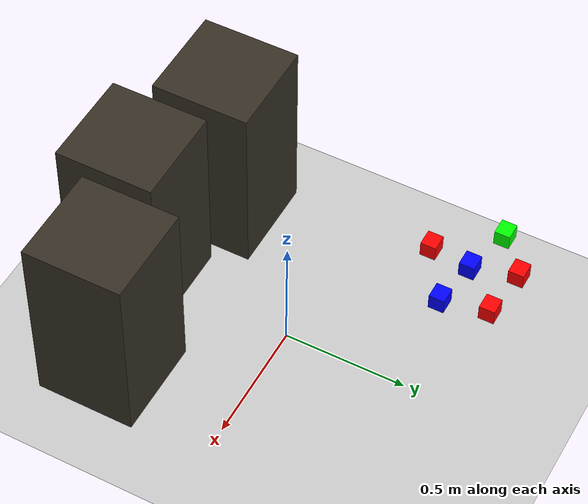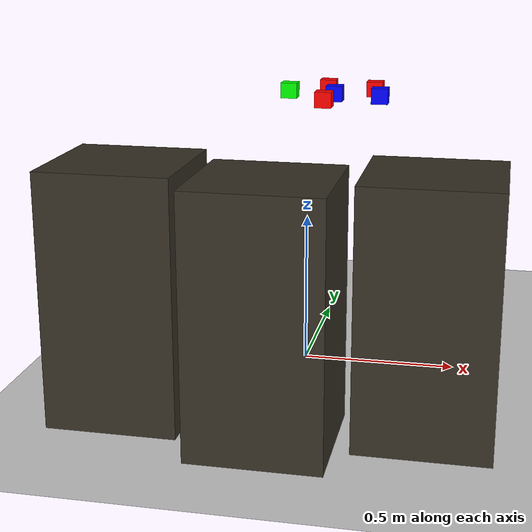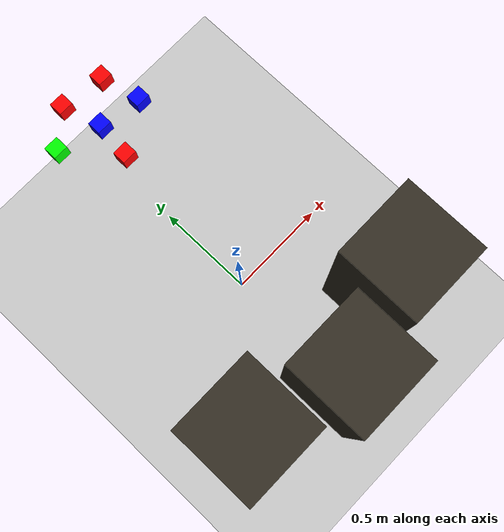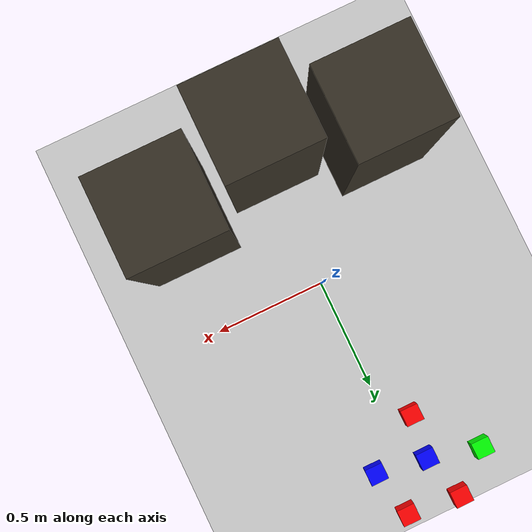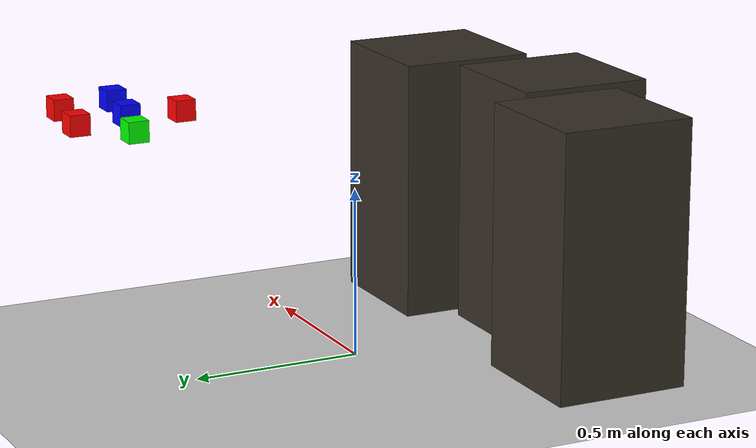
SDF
<sdf version="1.6">
 <world name="default">
  <light name="sun" type="directional">
   <pose>0 0 10 0 -0 0</pose>
   <diffuse>0.8 0.8 0.8 1</diffuse>
   <specular>0.2 0.2 0.2 1</specular>
   <attenuation>
    <range>1000</range>
    <constant>0.9</constant>
    <linear>0.01</linear>
    <quadratic>0.001</quadratic>
   </attenuation>
   <direction>-0.5 0.1 -0.9</direction>
  </light>
  <model name="ground_plane">
   <static>1</static>
   <link name="link">
    <collision name="collision">
     <geometry><plane><normal>0 0 1</normal><size>100 100</size></plane></geometry>
     <surface>
      <contact><collide_bitmask>65535</collide_bitmask></contact>
      <friction><ode><mu>100</mu><mu2>50</mu2></ode></friction>
     </surface>
    </collision>
    <visual name="visual">
     <cast_shadows>0</cast_shadows>
     <geometry><plane><normal>0 0 1</normal><size>100 100</size></plane></geometry>
     <material>
      <script><uri>file://media/materials/scripts/gazebo.material</uri><name>Gazebo/Grey</name></script>
     </material>
    </visual>
   </link>
  </model>
  <gravity>0 0 -9.8</gravity>
  <magnetic_field>6e-06 2.3e-05 -4.2e-05</magnetic_field>
  <atmosphere type="adiabatic"/>
  <physics name="default_physics" default="0" type="ode">
   <max_step_size>0.001</max_step_size>
   <real_time_factor>1</real_time_factor>
   <real_time_update_rate>1000</real_time_update_rate>
  </physics>
  <scene><ambient>0.4 0.4 0.4 1</ambient><background>0.7 0.7 0.7 1</background><shadows>1</shadows></scene>
  <audio><device>default</device></audio>
  <spherical_coordinates>
   <surface_model>EARTH_WGS84</surface_model>
   <latitude_deg>0</latitude_deg>
   <longitude_deg>0</longitude_deg>
   <elevation>0</elevation>
   <heading_deg>0</heading_deg>
  </spherical_coordinates>
  <model name="support_clone_dens">
   <link name="link">
    <inertial>
     <mass>87.36</mass>
     <inertia><ixx>5.59395</ixx><ixy>0</ixy><ixz>0</ixz><iyy>5.59395</iyy><iyz>0</iyz><izz>2.3296</izz></inertia>
    </inertial>
    <visual name="visual">
     <geometry><box><size>0.4 0.4 0.78</size></box></geometry>
     <material>
      <script><name>Gazebo/Grey</name><uri>file://media/materials/scripts/gazebo.material</uri></script>
      <shader type="vertex"><normal_map>__default__</normal_map></shader>
      <ambient>0.188 0.125 0.094 1</ambient>
      <diffuse>0.212 0.188 0.145 1</diffuse>
      <specular>0.498 0.329 0.208 1</specular>
      <emissive>0 0 0 1</emissive>
     </material>
    </visual>
    <collision name="collision">
     <geometry><box><size>0.4 0.4 0.78</size></box></geometry>
     <surface>
      <friction>
       <ode><mu>50</mu><mu2>50</mu2><fdir1>0 0 0</fdir1><slip1>0</slip1><slip2>0</slip2></ode>
       <torsional>
        <coefficient>1</coefficient>
        <patch_radius>0</patch_radius>
        <surface_radius>0</surface_radius>
        <use_patch_radius>1</use_patch_radius>
        <ode><slip>0</slip></ode>
       </torsional>
      </friction>
      <bounce><restitution_coefficient>0</restitution_coefficient><threshold>1e+06</threshold></bounce>
      <contact>
       <collide_without_contact>0</collide_without_contact>
       <collide_without_contact_bitmask>1</collide_without_contact_bitmask>
       <collide_bitmask>1</collide_bitmask>
       <ode>
        <soft_cfm>0</soft_cfm>
        <soft_erp>0.2</soft_erp>
        <kp>1e+13</kp>
        <kd>1</kd>
        <max_vel>0.01</max_vel>
        <min_depth>0</min_depth>
       </ode>
       <bullet>
        <split_impulse>1</split_impulse>
        <split_impulse_penetration_threshold>-0.01</split_impulse_penetration_threshold>
        <soft_cfm>0</soft_cfm>
        <soft_erp>0.2</soft_erp>
        <kp>1e+13</kp>
        <kd>1</kd>
       </bullet>
      </contact>
     </surface>
    </collision>
   </link>
   <static>0</static>
   <pose>0.451156 -0.498659 0.39 0 0 -2e-06</pose>
  </model>
  <model name="support_clone_dens_0">
   <link name="link">
    <inertial>
     <mass>87.36</mass>
     <inertia><ixx>5.59395</ixx><ixy>0</ixy><ixz>0</ixz><iyy>5.59395</iyy><iyz>0</iyz><izz>2.3296</izz></inertia>
    </inertial>
    <visual name="visual">
     <geometry><box><size>0.4 0.4 0.78</size></box></geometry>
     <material>
      <script><name>Gazebo/Grey</name><uri>file://media/materials/scripts/gazebo.material</uri></script>
      <shader type="vertex"><normal_map>__default__</normal_map></shader>
      <ambient>0.188 0.125 0.094 1</ambient>
      <diffuse>0.212 0.188 0.145 1</diffuse>
      <specular>0.498 0.329 0.208 1</specular>
      <emissive>0 0 0 1</emissive>
     </material>
    </visual>
    <collision name="collision">
     <geometry><box><size>0.4 0.4 0.78</size></box></geometry>
     <surface>
      <friction>
       <ode><mu>50</mu><mu2>50</mu2><fdir1>0 0 0</fdir1><slip1>0</slip1><slip2>0</slip2></ode>
       <torsional>
        <coefficient>1</coefficient>
        <patch_radius>0</patch_radius>
        <surface_radius>0</surface_radius>
        <use_patch_radius>1</use_patch_radius>
        <ode><slip>0</slip></ode>
       </torsional>
      </friction>
      <bounce><restitution_coefficient>0</restitution_coefficient><threshold>1e+06</threshold></bounce>
      <contact>
       <collide_without_contact>0</collide_without_contact>
       <collide_without_contact_bitmask>1</collide_without_contact_bitmask>
       <collide_bitmask>1</collide_bitmask>
       <ode>
        <soft_cfm>0</soft_cfm>
        <soft_erp>0.2</soft_erp>
        <kp>1e+13</kp>
        <kd>1</kd>
        <max_vel>0.01</max_vel>
        <min_depth>0</min_depth>
       </ode>
       <bullet>
        <split_impulse>1</split_impulse>
        <split_impulse_penetration_threshold>-0.01</split_impulse_penetration_threshold>
        <soft_cfm>0</soft_cfm>
        <soft_erp>0.2</soft_erp>
        <kp>1e+13</kp>
        <kd>1</kd>
       </bullet>
      </contact>
     </surface>
    </collision>
   </link>
   <static>0</static>
   <pose>-0.457185 -0.510692 0.39 0 0 -6e-06</pose>
  </model>
  <model name="support_clone_dens_1">
   <link name="link">
    <inertial>
     <mass>87.36</mass>
     <inertia><ixx>5.59395</ixx><ixy>0</ixy><ixz>0</ixz><iyy>5.59395</iyy><iyz>0</iyz><izz>2.3296</izz></inertia>
    </inertial>
    <visual name="visual">
     <geometry><box><size>0.4 0.4 0.78</size></box></geometry>
     <material>
      <script><name>Gazebo/Grey</name><uri>file://media/materials/scripts/gazebo.material</uri></script>
      <shader type="vertex"><normal_map>__default__</normal_map></shader>
      <ambient>0.188 0.125 0.094 1</ambient>
      <diffuse>0.212 0.188 0.145 1</diffuse>
      <specular>0.498 0.329 0.208 1</specular>
      <emissive>0 0 0 1</emissive>
     </material>
    </visual>
    <collision name="collision">
     <geometry><box><size>0.4 0.4 0.78</size></box></geometry>
     <surface>
      <friction>
       <ode><mu>50</mu><mu2>50</mu2><fdir1>0 0 0</fdir1><slip1>0</slip1><slip2>0</slip2></ode>
       <torsional>
        <coefficient>1</coefficient>
        <patch_radius>0</patch_radius>
        <surface_radius>0</surface_radius>
        <use_patch_radius>1</use_patch_radius>
        <ode><slip>0</slip></ode>
       </torsional>
      </friction>
      <bounce><restitution_coefficient>0</restitution_coefficient><threshold>1e+06</threshold></bounce>
      <contact>
       <collide_without_contact>0</collide_without_contact>
       <collide_without_contact_bitmask>1</collide_without_contact_bitmask>
       <collide_bitmask>1</collide_bitmask>
       <ode>
        <soft_cfm>0</soft_cfm>
        <soft_erp>0.2</soft_erp>
        <kp>1e+13</kp>
        <kd>1</kd>
        <max_vel>0.01</max_vel>
        <min_depth>0</min_depth>
       </ode>
       <bullet>
        <split_impulse>1</split_impulse>
        <split_impulse_penetration_threshold>-0.01</split_impulse_penetration_threshold>
        <soft_cfm>0</soft_cfm>
        <soft_erp>0.2</soft_erp>
        <kp>1e+13</kp>
        <kd>1</kd>
       </bullet>
      </contact>
     </surface>
    </collision>
   </link>
   <static>0</static>
   <pose>1.5e-05 -0.64469 0.39 0 0 -2e-06</pose>
  </model>
  <model name="unit_box_red_100">
   <link name="link">
    <inertial>
     <mass>0.1</mass>
     <inertia>
      <ixx>5.763e-05</ixx>
      <ixy>0</ixy>
      <ixz>0</ixz>
      <iyy>6.331e-05</iyy>
      <iyz>0</iyz>
      <izz>6.119e-05</izz>
     </inertia>
    </inertial>
    <visual name="visual">
     <geometry><box><size>0.063346 0.05771 0.059872</size></box></geometry>
     <material>
      <script><name>Gazebo/Grey</name><uri>file://media/materials/scripts/gazebo.material</uri></script>
      <ambient>1 0 0 1</ambient>
      <shader type="vertex"><normal_map>__default__</normal_map></shader>
      <diffuse>0.7 0.7 0.7 1</diffuse>
      <specular>0.01 0.01 0.01 1</specular>
      <emissive>0 0 0 1</emissive>
     </material>
    </visual>
    <collision name="collision">
     <geometry><box><size>0.063346 0.05771 0.059872</size></box></geometry>
     <surface>
      <friction>
       <ode><mu>100</mu><mu2>100</mu2><fdir1>0 0 0</fdir1><slip1>0</slip1><slip2>0</slip2></ode>
       <torsional>
        <coefficient>1</coefficient>
        <patch_radius>0</patch_radius>
        <surface_radius>0</surface_radius>
        <use_patch_radius>1</use_patch_radius>
        <ode><slip>0</slip></ode>
       </torsional>
      </friction>
      <bounce><restitution_coefficient>0</restitution_coefficient><threshold>1e+06</threshold></bounce>
      <contact>
       <collide_without_contact>0</collide_without_contact>
       <collide_without_contact_bitmask>1</collide_without_contact_bitmask>
       <collide_bitmask>1</collide_bitmask>
       <ode>
        <soft_cfm>0</soft_cfm>
        <soft_erp>0.2</soft_erp>
        <kp>1e+13</kp>
        <kd>1</kd>
        <max_vel>0.01</max_vel>
        <min_depth>0</min_depth>
       </ode>
       <bullet>
        <split_impulse>1</split_impulse>
        <split_impulse_penetration_threshold>-0.01</split_impulse_penetration_threshold>
        <soft_cfm>0</soft_cfm>
        <soft_erp>0.2</soft_erp>
        <kp>1e+13</kp>
        <kd>1</kd>
       </bullet>
      </contact>
     </surface>
    </collision>
   </link>
   <static>0</static>
   <pose>-0.03794 0.545561 0.804929 -2e-05 -6.8e-05 2e-06</pose>
  </model>
  <model name="unit_box_red_100_clone">
   <link name="link">
    <inertial>
     <mass>0.1</mass>
     <inertia>
      <ixx>5.763e-05</ixx>
      <ixy>0</ixy>
      <ixz>0</ixz>
      <iyy>6.331e-05</iyy>
      <iyz>0</iyz>
      <izz>6.119e-05</izz>
     </inertia>
    </inertial>
    <visual name="visual">
     <geometry><box><size>0.063346 0.05771 0.059872</size></box></geometry>
     <material>
      <script><name>Gazebo/Grey</name><uri>file://media/materials/scripts/gazebo.material</uri></script>
      <ambient>1 0 0 1</ambient>
      <shader type="vertex"><normal_map>__default__</normal_map></shader>
      <diffuse>0.7 0.7 0.7 1</diffuse>
      <specular>0.01 0.01 0.01 1</specular>
      <emissive>0 0 0 1</emissive>
     </material>
    </visual>
    <collision name="collision">
     <geometry><box><size>0.063346 0.05771 0.059872</size></box></geometry>
     <surface>
      <friction>
       <ode><mu>100</mu><mu2>100</mu2><fdir1>0 0 0</fdir1><slip1>0</slip1><slip2>0</slip2></ode>
       <torsional>
        <coefficient>1</coefficient>
        <patch_radius>0</patch_radius>
        <surface_radius>0</surface_radius>
        <use_patch_radius>1</use_patch_radius>
        <ode><slip>0</slip></ode>
       </torsional>
      </friction>
      <bounce><restitution_coefficient>0</restitution_coefficient><threshold>1e+06</threshold></bounce>
      <contact>
       <collide_without_contact>0</collide_without_contact>
       <collide_without_contact_bitmask>1</collide_without_contact_bitmask>
       <collide_bitmask>1</collide_bitmask>
       <ode>
        <soft_cfm>0</soft_cfm>
        <soft_erp>0.2</soft_erp>
        <kp>1e+13</kp>
        <kd>1</kd>
        <max_vel>0.01</max_vel>
        <min_depth>0</min_depth>
       </ode>
       <bullet>
        <split_impulse>1</split_impulse>
        <split_impulse_penetration_threshold>-0.01</split_impulse_penetration_threshold>
        <soft_cfm>0</soft_cfm>
        <soft_erp>0.2</soft_erp>
        <kp>1e+13</kp>
        <kd>1</kd>
       </bullet>
      </contact>
     </surface>
    </collision>
   </link>
   <static>0</static>
   <pose>0.11913 0.840927 0.804929 -2e-05 -6.8e-05 2e-06</pose>
  </model>
  <model name="unit_box_red_100_clone_0">
   <link name="link">
    <inertial>
     <mass>0.1</mass>
     <inertia>
      <ixx>5.763e-05</ixx>
      <ixy>0</ixy>
      <ixz>0</ixz>
      <iyy>6.331e-05</iyy>
      <iyz>0</iyz>
      <izz>6.119e-05</izz>
     </inertia>
    </inertial>
    <visual name="visual">
     <geometry><box><size>0.063346 0.05771 0.059872</size></box></geometry>
     <material>
      <script><name>Gazebo/Grey</name><uri>file://media/materials/scripts/gazebo.material</uri></script>
      <ambient>1 0 0 1</ambient>
      <shader type="vertex"><normal_map>__default__</normal_map></shader>
      <diffuse>0.7 0.7 0.7 1</diffuse>
      <specular>0.01 0.01 0.01 1</specular>
      <emissive>0 0 0 1</emissive>
     </material>
    </visual>
    <collision name="collision">
     <geometry><box><size>0.063346 0.05771 0.059872</size></box></geometry>
     <surface>
      <friction>
       <ode><mu>100</mu><mu2>100</mu2><fdir1>0 0 0</fdir1><slip1>0</slip1><slip2>0</slip2></ode>
       <torsional>
        <coefficient>1</coefficient>
        <patch_radius>0</patch_radius>
        <surface_radius>0</surface_radius>
        <use_patch_radius>1</use_patch_radius>
        <ode><slip>0</slip></ode>
       </torsional>
      </friction>
      <bounce><restitution_coefficient>0</restitution_coefficient><threshold>1e+06</threshold></bounce>
      <contact>
       <collide_without_contact>0</collide_without_contact>
       <collide_without_contact_bitmask>1</collide_without_contact_bitmask>
       <collide_bitmask>1</collide_bitmask>
       <ode>
        <soft_cfm>0</soft_cfm>
        <soft_erp>0.2</soft_erp>
        <kp>1e+13</kp>
        <kd>1</kd>
        <max_vel>0.01</max_vel>
        <min_depth>0</min_depth>
       </ode>
       <bullet>
        <split_impulse>1</split_impulse>
        <split_impulse_penetration_threshold>-0.01</split_impulse_penetration_threshold>
        <soft_cfm>0</soft_cfm>
        <soft_erp>0.2</soft_erp>
        <kp>1e+13</kp>
        <kd>1</kd>
       </bullet>
      </contact>
     </surface>
    </collision>
   </link>
   <static>0</static>
   <pose>-0.069185 0.862612 0.80493 -2e-05 -6.8e-05 2e-06</pose>
  </model>
  <model name="unit_box_blue_100">
   <link name="link">
    <inertial>
     <mass>0.1</mass>
     <inertia>
      <ixx>5.763e-05</ixx>
      <ixy>0</ixy>
      <ixz>0</ixz>
      <iyy>6.331e-05</iyy>
      <iyz>0</iyz>
      <izz>6.119e-05</izz>
     </inertia>
    </inertial>
    <visual name="visual">
     <geometry><box><size>0.063346 0.05771 0.059872</size></box></geometry>
     <material>
      <script><name>Gazebo/Grey</name><uri>file://media/materials/scripts/gazebo.material</uri></script>
      <ambient>0 0 1 1</ambient>
      <shader type="vertex"><normal_map>__default__</normal_map></shader>
      <diffuse>0.7 0.7 0.7 1</diffuse>
      <specular>0.01 0.01 0.01 1</specular>
      <emissive>0 0 0 1</emissive>
     </material>
    </visual>
    <collision name="collision">
     <geometry><box><size>0.063346 0.05771 0.059872</size></box></geometry>
     <surface>
      <friction>
       <ode><mu>100</mu><mu2>100</mu2><fdir1>0 0 0</fdir1><slip1>0</slip1><slip2>0</slip2></ode>
       <torsional>
        <coefficient>1</coefficient>
        <patch_radius>0</patch_radius>
        <surface_radius>0</surface_radius>
        <use_patch_radius>1</use_patch_radius>
        <ode><slip>0</slip></ode>
       </torsional>
      </friction>
      <bounce><restitution_coefficient>0</restitution_coefficient><threshold>1e+06</threshold></bounce>
      <contact>
       <collide_without_contact>0</collide_without_contact>
       <collide_without_contact_bitmask>1</collide_without_contact_bitmask>
       <collide_bitmask>1</collide_bitmask>
       <ode>
        <soft_cfm>0</soft_cfm>
        <soft_erp>0.2</soft_erp>
        <kp>1e+13</kp>
        <kd>1</kd>
        <max_vel>0.01</max_vel>
        <min_depth>0</min_depth>
       </ode>
       <bullet>
        <split_impulse>1</split_impulse>
        <split_impulse_penetration_threshold>-0.01</split_impulse_penetration_threshold>
        <soft_cfm>0</soft_cfm>
        <soft_erp>0.2</soft_erp>
        <kp>1e+13</kp>
        <kd>1</kd>
       </bullet>
      </contact>
     </surface>
    </collision>
   </link>
   <static>0</static>
   <pose>0.157665 0.672202 0.804929 0 -0 0</pose>
  </model>
  <model name="unit_box_blue_100_clone">
   <link name="link">
    <inertial>
     <mass>0.1</mass>
     <inertia>
      <ixx>5.763e-05</ixx>
      <ixy>0</ixy>
      <ixz>0</ixz>
      <iyy>6.331e-05</iyy>
      <iyz>0</iyz>
      <izz>6.119e-05</izz>
     </inertia>
    </inertial>
    <visual name="visual">
     <geometry><box><size>0.063346 0.05771 0.059872</size></box></geometry>
     <material>
      <script><name>Gazebo/Grey</name><uri>file://media/materials/scripts/gazebo.material</uri></script>
      <ambient>0 0 1 1</ambient>
      <shader type="vertex"><normal_map>__default__</normal_map></shader>
      <diffuse>0.7 0.7 0.7 1</diffuse>
      <specular>0.01 0.01 0.01 1</specular>
      <emissive>0 0 0 1</emissive>
     </material>
    </visual>
    <collision name="collision">
     <geometry><box><size>0.063346 0.05771 0.059872</size></box></geometry>
     <surface>
      <friction>
       <ode><mu>100</mu><mu2>100</mu2><fdir1>0 0 0</fdir1><slip1>0</slip1><slip2>0</slip2></ode>
       <torsional>
        <coefficient>1</coefficient>
        <patch_radius>0</patch_radius>
        <surface_radius>0</surface_radius>
        <use_patch_radius>1</use_patch_radius>
        <ode><slip>0</slip></ode>
       </torsional>
      </friction>
      <bounce><restitution_coefficient>0</restitution_coefficient><threshold>1e+06</threshold></bounce>
      <contact>
       <collide_without_contact>0</collide_without_contact>
       <collide_without_contact_bitmask>1</collide_without_contact_bitmask>
       <collide_bitmask>1</collide_bitmask>
       <ode>
        <soft_cfm>0</soft_cfm>
        <soft_erp>0.2</soft_erp>
        <kp>1e+13</kp>
        <kd>1</kd>
        <max_vel>0.01</max_vel>
        <min_depth>0</min_depth>
       </ode>
       <bullet>
        <split_impulse>1</split_impulse>
        <split_impulse_penetration_threshold>-0.01</split_impulse_penetration_threshold>
        <soft_cfm>0</soft_cfm>
        <soft_erp>0.2</soft_erp>
        <kp>1e+13</kp>
        <kd>1</kd>
       </bullet>
      </contact>
     </surface>
    </collision>
   </link>
   <static>0</static>
   <pose>-0.02049 0.700437 0.804929 0 -0 0</pose>
  </model>
  <model name="unit_box_green_100">
   <link name="link">
    <inertial>
     <mass>0.1</mass>
     <inertia>
      <ixx>5.763e-05</ixx>
      <ixy>0</ixy>
      <ixz>0</ixz>
      <iyy>6.331e-05</iyy>
      <iyz>0</iyz>
      <izz>6.119e-05</izz>
     </inertia>
    </inertial>
    <visual name="visual">
     <geometry><box><size>0.063346 0.05771 0.059872</size></box></geometry>
     <material>
      <script><name>Gazebo/Grey</name><uri>file://media/materials/scripts/gazebo.material</uri></script>
      <ambient>0 1 0 1</ambient>
      <shader type="vertex"><normal_map>__default__</normal_map></shader>
      <diffuse>0.7 0.7 0.7 1</diffuse>
      <specular>0.01 0.01 0.01 1</specular>
      <emissive>0 0 0 1</emissive>
     </material>
    </visual>
    <collision name="collision">
     <geometry><box><size>0.063346 0.05771 0.059872</size></box></geometry>
     <surface>
      <friction>
       <ode><mu>100</mu><mu2>100</mu2><fdir1>0 0 0</fdir1><slip1>0</slip1><slip2>0</slip2></ode>
       <torsional>
        <coefficient>1</coefficient>
        <patch_radius>0</patch_radius>
        <surface_radius>0</surface_radius>
        <use_patch_radius>1</use_patch_radius>
        <ode><slip>0</slip></ode>
       </torsional>
      </friction>
      <bounce><restitution_coefficient>0</restitution_coefficient><threshold>1e+06</threshold></bounce>
      <contact>
       <collide_without_contact>0</collide_without_contact>
       <collide_without_contact_bitmask>1</collide_without_contact_bitmask>
       <collide_bitmask>1</collide_bitmask>
       <ode>
        <soft_cfm>0</soft_cfm>
        <soft_erp>0.2</soft_erp>
        <kp>1e+13</kp>
        <kd>1</kd>
        <max_vel>0.01</max_vel>
        <min_depth>0</min_depth>
       </ode>
       <bullet>
        <split_impulse>1</split_impulse>
        <split_impulse_penetration_threshold>-0.01</split_impulse_penetration_threshold>
        <soft_cfm>0</soft_cfm>
        <soft_erp>0.2</soft_erp>
        <kp>1e+13</kp>
        <kd>1</kd>
       </bullet>
      </contact>
     </surface>
    </collision>
   </link>
   <static>0</static>
   <pose>-0.205976 0.748194 0.804933 0 -0 0</pose>
  </model>
 </world>
</sdf>
